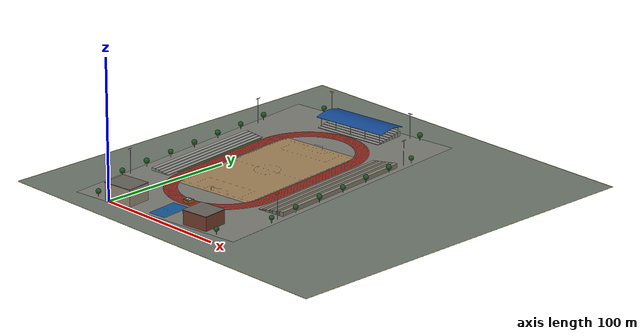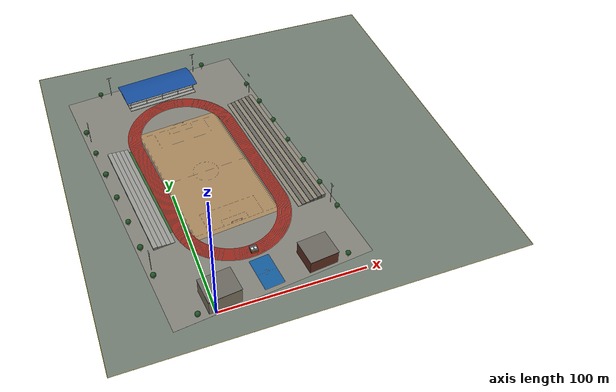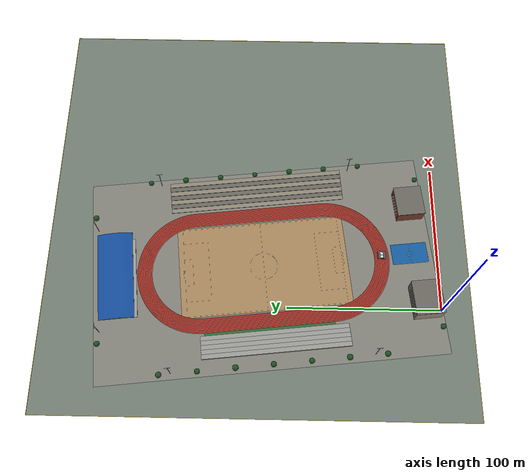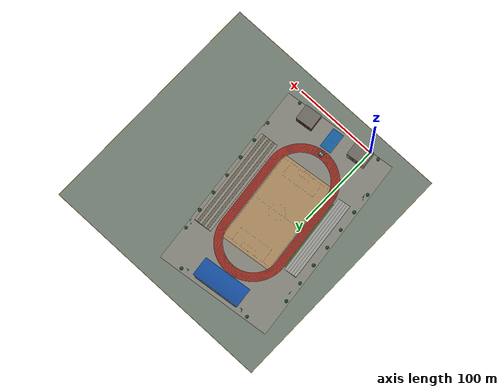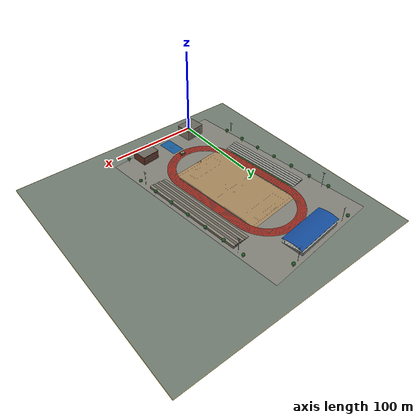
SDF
<?xml version="1.0" encoding="UTF-8"?>
<sdf version="1.9">
  <world name="DRONE_CJU_TRACK">
    <magnetic_field>6.0e-6 2.3e-5 -4.2e-5</magnetic_field>
    <atmosphere type="adiabatic"/>

    <plugin filename="gz-sim-physics-system" name="gz::sim::systems::Physics"/>
    <plugin filename="gz-sim-user-commands-system" name="gz::sim::systems::UserCommands"/>
    <plugin filename="gz-sim-scene-broadcaster-system" name="gz::sim::systems::SceneBroadcaster"/>
    <plugin filename="gz-sim-contact-system" name="gz::sim::systems::Contact"/>
    <plugin filename="gz-sim-sensors-system" name="gz::sim::systems::Sensors">
      <render_engine>ogre2</render_engine>
    </plugin>
    <plugin filename="gz-sim-imu-system" name="gz::sim::systems::Imu"/>
    <plugin filename="gz-sim-air-pressure-system" name="gz::sim::systems::AirPressure"/>
    <plugin filename="gz-sim-magnetometer-system" name="gz::sim::systems::Magnetometer"/>
    <plugin filename="gz-sim-navsat-system" name="gz::sim::systems::NavSat"/>

    <physics name="2ms" type="ignored">
      <max_step_size>0.002</max_step_size>
      <real_time_factor>1.0</real_time_factor>
      <real_time_update_rate>500</real_time_update_rate>
    </physics>
    <gravity>0 0 -9.8066</gravity>

    <scene>
      <ambient>0.58 0.60 0.62 1</ambient>
      <background>0.62 0.75 0.88 1</background>
      <grid>true</grid>
      <origin_visual>true</origin_visual>
      <sky/>
    </scene>
    <light type="directional" name="sun">
      <pose>100 100 300 0 0 0</pose>
      <diffuse>0.90 0.88 0.82 1</diffuse>
      <specular>0.10 0.10 0.10 1</specular>
      <direction>-0.35 0.25 -0.90</direction>
      <cast_shadows>true</cast_shadows>
    </light>

    <gui fullscreen="0">
      <plugin filename="MinimalScene" name="3D View">
        <gz-gui>
          <title>DRONE CJU TRACK - Red Track / Smooth Grandstand Roof</title>
          <property type="bool" key="showTitleBar">false</property>
          <property type="string" key="state">docked</property>
        </gz-gui>
        <engine>ogre2</engine>
        <scene>scene</scene>
        <ambient_light>0.58 0.60 0.62</ambient_light>
        <background_color>0.62 0.75 0.88</background_color>
        <camera_pose>130 -10 180 0 0.72 2.25</camera_pose>
        <camera_clip><near>0.2</near><far>1000</far></camera_clip>
      </plugin>
      <plugin filename="GzSceneManager" name="Scene Manager"/>
      <plugin filename="InteractiveViewControl" name="Interactive view control"/>
      <plugin filename="CameraTracking" name="Camera Tracking"/>
      <plugin filename="EntityTree" name="Entity tree"/>
      <plugin filename="WorldControl" name="World control">
        <play_pause>true</play_pause><step>true</step><start_paused>true</start_paused>
      </plugin>
      <plugin filename="WorldStats" name="World stats">
        <sim_time>true</sim_time><real_time_factor>true</real_time_factor>
      </plugin>
    </gui>

    <spherical_coordinates>
      <surface_model>EARTH_WGS84</surface_model>
      <latitude_deg>36.65440</latitude_deg>
      <longitude_deg>127.49591</longitude_deg>
      <elevation>74.0</elevation>
      <heading_deg>0</heading_deg>
    </spherical_coordinates>

    <model name="experiment_ground">
      <static>true</static>
      <pose>70 120 0 0 0 0</pose>
      <link name="ground">
        <collision name="collision">
          <pose>0 0 -0.05 0 0 0</pose>
          <geometry><box><size>280 280 0.1</size></box></geometry>
        </collision>
        <visual name="visual">
          <pose>0 0 -0.05 0 0 0</pose>
          <cast_shadows>false</cast_shadows>
          <geometry><box><size>280 280 0.1</size></box></geometry>
          <material>
            <ambient>0.30 0.34 0.30 1</ambient>
            <diffuse>0.42 0.46 0.42 1</diffuse>
            <specular>0.02 0.02 0.02 1</specular>
          </material>
        </visual>
      </link>
    </model>

    <model name="map_boundary">
      <static>true</static>
      <link name="boundary">
        <visual name="south"><pose>70 -20 0.006 0 0 0</pose><geometry><box><size>280 0.20 0.012</size></box></geometry><material><ambient>1 0.82 0.05 1</ambient><diffuse>1 0.82 0.05 1</diffuse></material></visual>
        <visual name="north"><pose>70 260 0.006 0 0 0</pose><geometry><box><size>280 0.20 0.012</size></box></geometry><material><ambient>1 0.82 0.05 1</ambient><diffuse>1 0.82 0.05 1</diffuse></material></visual>
        <visual name="west"><pose>-70 120 0.006 0 0 0</pose><geometry><box><size>0.20 280 0.012</size></box></geometry><material><ambient>1 0.82 0.05 1</ambient><diffuse>1 0.82 0.05 1</diffuse></material></visual>
        <visual name="east"><pose>210 120 0.006 0 0 0</pose><geometry><box><size>0.20 280 0.012</size></box></geometry><material><ambient>1 0.82 0.05 1</ambient><diffuse>1 0.82 0.05 1</diffuse></material></visual>
      </link>
    </model>

    <include>
      <uri>model://drone_cju_track_stadium</uri>
      <name>drone_cju_track_stadium</name>
      <pose>28.402605907228356 115.5890134880474 0 0 0 1.6807520696705394</pose>
    </include>
    <include>
      <uri>model://drone_cju_track_running_track</uri>
      <name>drone_cju_track_running_track</name>
      <pose>28.402605907228356 115.5890134880474 0 0 0 1.6807520696705394</pose>
    </include>

    <frame name="drone_spawn"><pose>30 30 0 0 0 0</pose></frame>
    <frame name="trailer_spawn"><pose>37.071067811865476 37.071067811865476 0 0 0 0</pose></frame>
    <include>
      <uri>model://moving_platform_aruco_velocity</uri>
      <name>trailer</name>
      <pose>37.071067811865476 37.071067811865476 0 0 0 0</pose>
    </include>

    <!-- PX4 SITL dynamically creates x500_city_rgbd_lidar at (30,30,0). -->
  </world>
</sdf>
